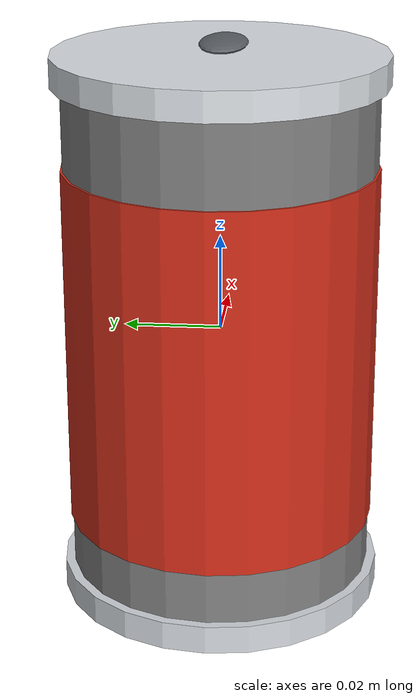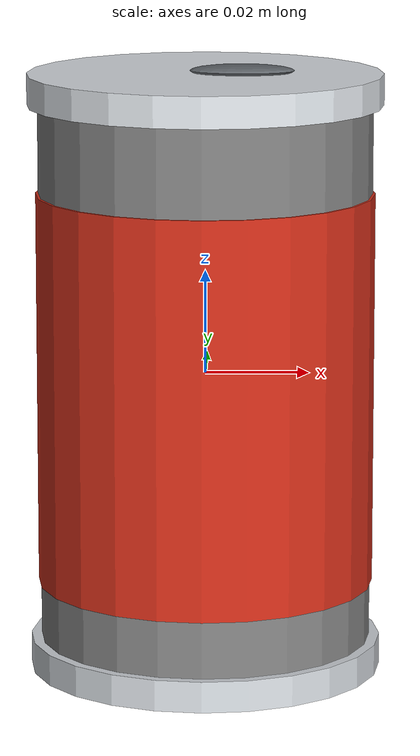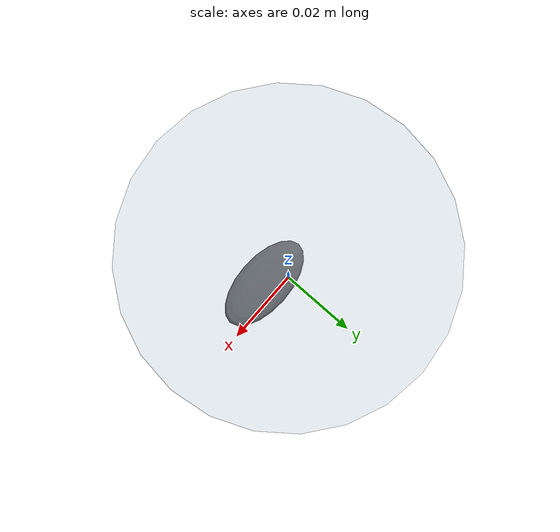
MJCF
<mujoco model="vla82_vla82_019">
  <compiler angle="radian"/>
  <asset>
    <texture name="source_texture" type="2d" file="source_texture.png"/>
    <material name="source_material" texture="source_texture" rgba="1 1 1 1"/>
  </asset>
  <default>
    <default class="visual"><geom contype="0" conaffinity="0" group="1" mass="0"/></default>
    <default class="collision"><geom contype="1" conaffinity="1" group="0" density="300" friction="0.45 0.004 0.0001" solref="0.02 1" solimp="0.9 0.95 0.001"/></default>
    <default class="region"><geom contype="0" conaffinity="0" group="1" rgba="0 1 0 0" mass="0"/></default>
  </default>
  <worldbody><body><body name="object">
    <geom name="can_body" class="visual" type="cylinder" size="0.0315 0.054" rgba="0.72 0.74 0.76 1"/>
    <geom name="can_label" class="visual" type="cylinder" pos="0 0 -0.003" size="0.0325 0.038" rgba="0.82 0.18 0.10 1"/>
    <geom name="can_top_rim" class="visual" type="cylinder" pos="0 0 0.055" size="0.034 0.003" rgba="0.86 0.88 0.90 1"/>
    <geom name="can_bottom_rim" class="visual" type="cylinder" pos="0 0 -0.055" size="0.034 0.003" rgba="0.82 0.84 0.86 1"/>
    <geom name="pull_tab" class="visual" type="ellipsoid" pos="0.007 0 0.0585" size="0.010 0.005 0.0012" rgba="0.36 0.38 0.40 1"/>
    <geom name="legacy_visual_mass_carrier" class="visual" type="cylinder" size="0.032000 0.055000" mass="0.353868997" rgba="0 0 0 0"/>
    <geom name="collision" class="collision" type="cylinder" size="0.032000 0.055000"/>
    <geom name="reg_bbox" class="region" type="box" pos="0 0 0" size="0.032000 0.032000 0.055000"/>
  </body></body></worldbody>
  <actuator/>
</mujoco>
